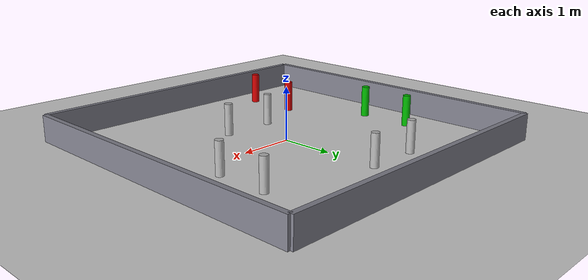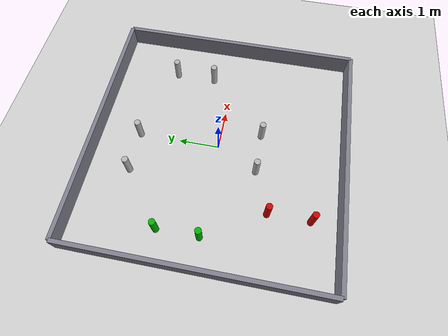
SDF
<sdf version="1.10">
<world name="gate_course">
<physics name="1ms" type="ignored">
<max_step_size>0.001</max_step_size>
<real_time_factor>1.0</real_time_factor>
</physics>
<plugin filename="gz-sim-physics-system" name="gz::sim::systems::Physics"/>
<plugin filename="gz-sim-user-commands-system" name="gz::sim::systems::UserCommands"/>
<plugin filename="gz-sim-scene-broadcaster-system" name="gz::sim::systems::SceneBroadcaster"/>
<plugin filename="gz-sim-sensors-system" name="gz::sim::systems::Sensors">
<render_engine>ogre2</render_engine>
</plugin>
<plugin filename="gz-sim-imu-system" name="gz::sim::systems::Imu"/>
<scene>
<ambient>0.6 0.6 0.6 1</ambient>
<background>0.8 0.85 0.9 1</background>
<shadows>false</shadows>
</scene>
<light type="directional" name="sun">
<cast_shadows>false</cast_shadows>
<pose>0 0 10 0 0 0</pose>
<diffuse>0.9 0.9 0.9 1</diffuse>
<specular>0.1 0.1 0.1 1</specular>
<direction>-0.3 0.2 -0.9</direction>
</light>
<model name="ground_plane">
<static>true</static>
<link name="link">
<collision name="collision">
<geometry>
<plane>
<normal>0 0 1</normal>
<size>100 100</size>
</plane>
</geometry>
</collision>
<visual name="visual">
<geometry>
<plane>
<normal>0 0 1</normal>
<size>100 100</size>
</plane>
</geometry>
<material>
<ambient>0.8 0.8 0.8 1</ambient>
<diffuse>0.8 0.8 0.8 1</diffuse>
</material>
</visual>
</link>
</model>
<model name="wall_south">
<static>true</static>
<pose>0 -3.05 0.25 0 0 0</pose>
<link name="link">
<collision name="collision">
<geometry>
<box>
<size>6.1 0.1 0.5</size>
</box>
</geometry>
</collision>
<visual name="visual">
<geometry>
<box>
<size>6.1 0.1 0.5</size>
</box>
</geometry>
<material>
<ambient>0.5 0.5 0.55 1</ambient>
<diffuse>0.5 0.5 0.55 1</diffuse>
<specular>0.1 0.1 0.1 1</specular>
</material>
</visual>
</link>
</model>
<model name="wall_north">
<static>true</static>
<pose>0 3.05 0.25 0 0 0</pose>
<link name="link">
<collision name="collision">
<geometry>
<box>
<size>6.1 0.1 0.5</size>
</box>
</geometry>
</collision>
<visual name="visual">
<geometry>
<box>
<size>6.1 0.1 0.5</size>
</box>
</geometry>
<material>
<ambient>0.5 0.5 0.55 1</ambient>
<diffuse>0.5 0.5 0.55 1</diffuse>
<specular>0.1 0.1 0.1 1</specular>
</material>
</visual>
</link>
</model>
<model name="wall_west">
<static>true</static>
<pose>-3.05 0 0.25 0 0 0</pose>
<link name="link">
<collision name="collision">
<geometry>
<box>
<size>0.1 6.1 0.5</size>
</box>
</geometry>
</collision>
<visual name="visual">
<geometry>
<box>
<size>0.1 6.1 0.5</size>
</box>
</geometry>
<material>
<ambient>0.5 0.5 0.55 1</ambient>
<diffuse>0.5 0.5 0.55 1</diffuse>
<specular>0.1 0.1 0.1 1</specular>
</material>
</visual>
</link>
</model>
<model name="wall_east">
<static>true</static>
<pose>3.05 0 0.25 0 0 0</pose>
<link name="link">
<collision name="collision">
<geometry>
<box>
<size>0.1 6.1 0.5</size>
</box>
</geometry>
</collision>
<visual name="visual">
<geometry>
<box>
<size>0.1 6.1 0.5</size>
</box>
</geometry>
<material>
<ambient>0.5 0.5 0.55 1</ambient>
<diffuse>0.5 0.5 0.55 1</diffuse>
<specular>0.1 0.1 0.1 1</specular>
</material>
</visual>
</link>
</model>
<model name="pillar_start_a">
<static>true</static>
<pose>-1.5 -2.4 0.3 0 0 0</pose>
<link name="link">
<collision name="collision">
<geometry>
<cylinder>
<radius>0.075</radius>
<length>0.6</length>
</cylinder>
</geometry>
</collision>
<visual name="visual">
<geometry>
<cylinder>
<radius>0.075</radius>
<length>0.6</length>
</cylinder>
</geometry>
<material>
<ambient>0.8 0.0 0.0 1</ambient>
<diffuse>0.8 0.0 0.0 1</diffuse>
<specular>0.1 0.1 0.1 1</specular>
</material>
</visual>
</link>
</model>
<model name="pillar_start_b">
<static>true</static>
<pose>-1.5 -1.4 0.3 0 0 0</pose>
<link name="link">
<collision name="collision">
<geometry>
<cylinder>
<radius>0.075</radius>
<length>0.6</length>
</cylinder>
</geometry>
</collision>
<visual name="visual">
<geometry>
<cylinder>
<radius>0.075</radius>
<length>0.6</length>
</cylinder>
</geometry>
<material>
<ambient>0.8 0.0 0.0 1</ambient>
<diffuse>0.8 0.0 0.0 1</diffuse>
<specular>0.1 0.1 0.1 1</specular>
</material>
</visual>
</link>
</model>
<model name="pillar_g1_a">
<static>true</static>
<pose>-0.5 -1.0 0.3 0 0 0</pose>
<link name="link">
<collision name="collision">
<geometry>
<cylinder>
<radius>0.075</radius>
<length>0.6</length>
</cylinder>
</geometry>
</collision>
<visual name="visual">
<geometry>
<cylinder>
<radius>0.075</radius>
<length>0.6</length>
</cylinder>
</geometry>
<material>
<ambient>0.7 0.7 0.7 1</ambient>
<diffuse>0.7 0.7 0.7 1</diffuse>
<specular>0.1 0.1 0.1 1</specular>
</material>
</visual>
</link>
</model>
<model name="pillar_g1_b">
<static>true</static>
<pose>0.5 -1.0 0.3 0 0 0</pose>
<link name="link">
<collision name="collision">
<geometry>
<cylinder>
<radius>0.075</radius>
<length>0.6</length>
</cylinder>
</geometry>
</collision>
<visual name="visual">
<geometry>
<cylinder>
<radius>0.075</radius>
<length>0.6</length>
</cylinder>
</geometry>
<material>
<ambient>0.7 0.7 0.7 1</ambient>
<diffuse>0.7 0.7 0.7 1</diffuse>
<specular>0.1 0.1 0.1 1</specular>
</material>
</visual>
</link>
</model>
<model name="pillar_g2_a">
<static>true</static>
<pose>2.0 0.5 0.3 0 0 0</pose>
<link name="link">
<collision name="collision">
<geometry>
<cylinder>
<radius>0.075</radius>
<length>0.6</length>
</cylinder>
</geometry>
</collision>
<visual name="visual">
<geometry>
<cylinder>
<radius>0.075</radius>
<length>0.6</length>
</cylinder>
</geometry>
<material>
<ambient>0.7 0.7 0.7 1</ambient>
<diffuse>0.7 0.7 0.7 1</diffuse>
<specular>0.1 0.1 0.1 1</specular>
</material>
</visual>
</link>
</model>
<model name="pillar_g2_b">
<static>true</static>
<pose>2.0 1.5 0.3 0 0 0</pose>
<link name="link">
<collision name="collision">
<geometry>
<cylinder>
<radius>0.075</radius>
<length>0.6</length>
</cylinder>
</geometry>
</collision>
<visual name="visual">
<geometry>
<cylinder>
<radius>0.075</radius>
<length>0.6</length>
</cylinder>
</geometry>
<material>
<ambient>0.7 0.7 0.7 1</ambient>
<diffuse>0.7 0.7 0.7 1</diffuse>
<specular>0.1 0.1 0.1 1</specular>
</material>
</visual>
</link>
</model>
<model name="pillar_g3_a">
<static>true</static>
<pose>-1.0 2.0 0.3 0 0 0</pose>
<link name="link">
<collision name="collision">
<geometry>
<cylinder>
<radius>0.075</radius>
<length>0.6</length>
</cylinder>
</geometry>
</collision>
<visual name="visual">
<geometry>
<cylinder>
<radius>0.075</radius>
<length>0.6</length>
</cylinder>
</geometry>
<material>
<ambient>0.7 0.7 0.7 1</ambient>
<diffuse>0.7 0.7 0.7 1</diffuse>
<specular>0.1 0.1 0.1 1</specular>
</material>
</visual>
</link>
</model>
<model name="pillar_g3_b">
<static>true</static>
<pose>0.0 2.0 0.3 0 0 0</pose>
<link name="link">
<collision name="collision">
<geometry>
<cylinder>
<radius>0.075</radius>
<length>0.6</length>
</cylinder>
</geometry>
</collision>
<visual name="visual">
<geometry>
<cylinder>
<radius>0.075</radius>
<length>0.6</length>
</cylinder>
</geometry>
<material>
<ambient>0.7 0.7 0.7 1</ambient>
<diffuse>0.7 0.7 0.7 1</diffuse>
<specular>0.1 0.1 0.1 1</specular>
</material>
</visual>
</link>
</model>
<model name="pillar_goal_a">
<static>true</static>
<pose>-2.3 0.0 0.3 0 0 0</pose>
<link name="link">
<collision name="collision">
<geometry>
<cylinder>
<radius>0.075</radius>
<length>0.6</length>
</cylinder>
</geometry>
</collision>
<visual name="visual">
<geometry>
<cylinder>
<radius>0.075</radius>
<length>0.6</length>
</cylinder>
</geometry>
<material>
<ambient>0.0 0.7 0.0 1</ambient>
<diffuse>0.0 0.7 0.0 1</diffuse>
<specular>0.1 0.1 0.1 1</specular>
</material>
</visual>
</link>
</model>
<model name="pillar_goal_b">
<static>true</static>
<pose>-2.3 1.0 0.3 0 0 0</pose>
<link name="link">
<collision name="collision">
<geometry>
<cylinder>
<radius>0.075</radius>
<length>0.6</length>
</cylinder>
</geometry>
</collision>
<visual name="visual">
<geometry>
<cylinder>
<radius>0.075</radius>
<length>0.6</length>
</cylinder>
</geometry>
<material>
<ambient>0.0 0.7 0.0 1</ambient>
<diffuse>0.0 0.7 0.0 1</diffuse>
<specular>0.1 0.1 0.1 1</specular>
</material>
</visual>
</link>
</model>
</world>
</sdf>
